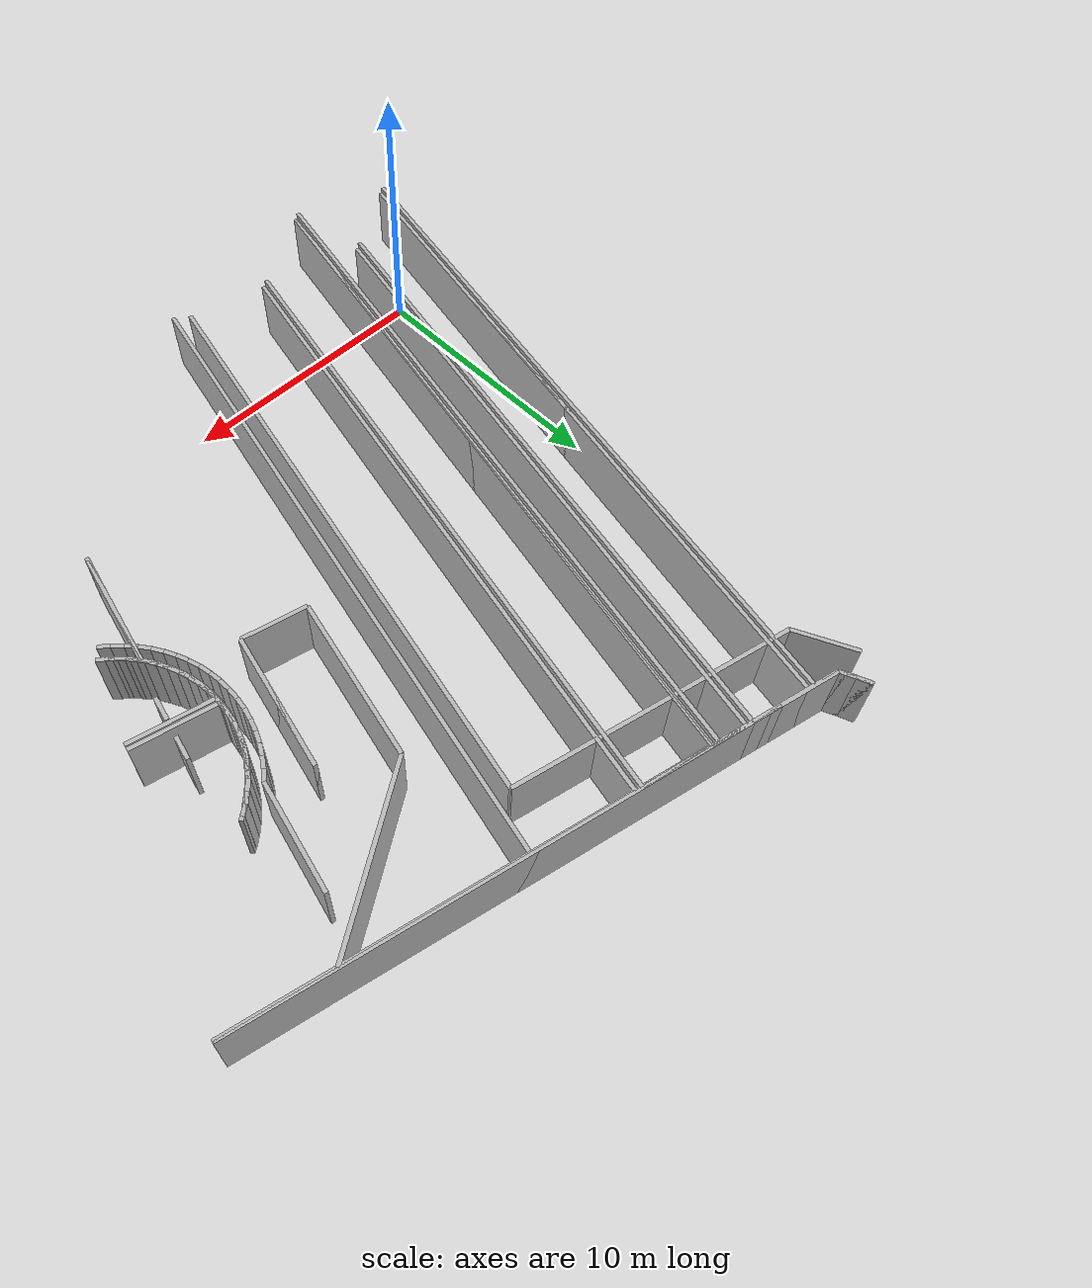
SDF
<sdf version="1.6">
 <model name="sps_2304">
  <static>1</static>
  <allow_auto_disable>0</allow_auto_disable>
  <link name="Wall241">
   <collision name="collision"><geometry><box><size>24.8578 0.15 2.5</size></box></geometry></collision>
   <visual name="visual">
    <geometry><box><size>24.8578 0.15 2.5</size></box></geometry>
    <transparency>0.0</transparency>
   </visual>
   <pose>3.15078 10.2592 1.25 0 0 -1.78506</pose>
  </link>
  <link name="Wall244">
   <collision name="collision"><geometry><box><size>25.0952 0.15 2.5</size></box></geometry></collision>
   <visual name="visual">
    <geometry><box><size>25.0952 0.15 2.5</size></box></geometry>
    <transparency>0.0</transparency>
   </visual>
   <pose>10.7935 8.4622 1.25 0 0 -1.78505</pose>
  </link>
  <link name="Wall546">
   <collision name="collision"><geometry><box><size>22.8546 0.15 2.5</size></box></geometry></collision>
   <visual name="visual">
    <geometry><box><size>22.8546 0.15 2.5</size></box></geometry>
    <transparency>0.0</transparency>
   </visual>
   <pose>10.0221 7.73909 1.25 0 0 -1.78506</pose>
  </link>
  <link name="Wall547">
   <collision name="collision"><geometry><box><size>10.5806 0.15 2.5</size></box></geometry></collision>
   <visual name="visual">
    <geometry><box><size>10.5806 0.15 2.5</size></box></geometry>
    <transparency>0.0</transparency>
   </visual>
   <pose>7.28295 20.0318 1.25 0 0 -0.214621</pose>
  </link>
  <link name="Wall549">
   <collision name="collision"><geometry><box><size>5.15297 0.15 2.5</size></box></geometry></collision>
   <visual name="visual">
    <geometry><box><size>5.15297 0.15 2.5</size></box></geometry>
    <transparency>0.0</transparency>
   </visual>
   <pose>15.6258 11.836 1.25 0 -0 1.35789</pose>
  </link>
  <link name="Wall835">
   <collision name="collision"><geometry><box><size>27.308 0.15 2.5</size></box></geometry></collision>
   <visual name="visual">
    <geometry><box><size>27.308 0.15 2.5</size></box></geometry>
    <transparency>0.0</transparency>
   </visual>
   <pose>0.496238 9.58308 1.25 0 0 -1.78506</pose>
  </link>
  <link name="Wall837">
   <collision name="collision"><geometry><box><size>27.9452 0.15 2.5</size></box></geometry></collision>
   <visual name="visual">
    <geometry><box><size>27.9452 0.15 2.5</size></box></geometry>
    <transparency>0.0</transparency>
   </visual>
   <pose>3.84597 8.51561 1.25 0 0 -1.78505</pose>
  </link>
  <link name="Wall838">
   <collision name="collision"><geometry><box><size>27.6955 0.15 2.5</size></box></geometry></collision>
   <visual name="visual">
    <geometry><box><size>27.6955 0.15 2.5</size></box></geometry>
    <transparency>0.0</transparency>
   </visual>
   <pose>4.11694 8.58458 1.25 0 0 -1.78505</pose>
  </link>
  <link name="Wall1445">
   <collision name="collision"><geometry><box><size>3.97784 0.15 2.5</size></box></geometry></collision>
   <visual name="visual">
    <geometry><box><size>3.97784 0.15 2.5</size></box></geometry>
    <transparency>0.0</transparency>
   </visual>
   <pose>18.0342 15.6526 1.25 0 -0 1.35664</pose>
  </link>
  <link name="Wall1751">
   <collision name="collision"><geometry><box><size>25.1081 0.15 2.5</size></box></geometry></collision>
   <visual name="visual">
    <geometry><box><size>25.1081 0.15 2.5</size></box></geometry>
    <transparency>0.0</transparency>
   </visual>
   <pose>2.87984 10.1901 1.25 0 0 -1.78505</pose>
  </link>
  <link name="Wall1756">
   <collision name="collision"><geometry><box><size>4.57776 0.15 2.5</size></box></geometry></collision>
   <visual name="visual">
    <geometry><box><size>4.57776 0.15 2.5</size></box></geometry>
    <transparency>0.0</transparency>
   </visual>
   <pose>17.3343 5.53429 1.25 0 -0 1.35792</pose>
  </link>
  <link name="Wall2047">
   <collision name="collision"><geometry><box><size>27.5582 0.15 2.5</size></box></geometry></collision>
   <visual name="visual">
    <geometry><box><size>27.5582 0.15 2.5</size></box></geometry>
    <transparency>0.0</transparency>
   </visual>
   <pose>0.225456 9.51408 1.25 0 0 -1.78506</pose>
  </link>
  <link name="Wall2064">
   <collision name="collision"><geometry><box><size>25.0955 0.15 2.5</size></box></geometry></collision>
   <visual name="visual">
    <geometry><box><size>25.0955 0.15 2.5</size></box></geometry>
    <transparency>0.0</transparency>
   </visual>
   <pose>6.93383 9.30208 1.25 0 0 -1.78506</pose>
  </link>
  <link name="Wall2065">
   <collision name="collision"><geometry><box><size>24.8453 0.15 2.5</size></box></geometry></collision>
   <visual name="visual">
    <geometry><box><size>24.8453 0.15 2.5</size></box></geometry>
    <transparency>0.0</transparency>
   </visual>
   <pose>7.20473 9.37111 1.25 0 0 -1.78505</pose>
  </link>
  <link name="Wall4927">
   <collision name="collision"><geometry><box><size>27.6955 0.15 2.5</size></box></geometry></collision>
   <visual name="visual">
    <geometry><box><size>27.6955 0.15 2.5</size></box></geometry>
    <transparency>0.0</transparency>
   </visual>
   <pose>4.11694 8.58458 1.25 0 -0 1.35654</pose>
  </link>
  <link name="Wall4928">
   <collision name="collision"><geometry><box><size>2.60003 0.15 2.5</size></box></geometry></collision>
   <visual name="visual">
    <geometry><box><size>2.60003 0.15 2.5</size></box></geometry>
    <transparency>0.0</transparency>
   </visual>
   <pose>8.33153 21.8393 1.25 0 0 -0.214246</pose>
  </link>
  <link name="Wall5298">
   <collision name="collision"><geometry><box><size>27.308 0.15 2.5</size></box></geometry></collision>
   <visual name="visual">
    <geometry><box><size>27.308 0.15 2.5</size></box></geometry>
    <transparency>0.0</transparency>
   </visual>
   <pose>0.496238 9.58308 1.25 0 -0 1.35653</pose>
  </link>
  <link name="Wall5299">
   <collision name="collision"><geometry><box><size>2.1999 0.15 2.5</size></box></geometry></collision>
   <visual name="visual">
    <geometry><box><size>2.1999 0.15 2.5</size></box></geometry>
    <transparency>0.0</transparency>
   </visual>
   <pose>4.47423 22.691 1.25 0 0 -0.214269</pose>
  </link>
  <link name="Wall7833">
   <collision name="collision"><geometry><box><size>19.2016 0.15 2.5</size></box></geometry></collision>
   <visual name="visual">
    <geometry><box><size>19.2016 0.15 2.5</size></box></geometry>
    <transparency>0.0</transparency>
   </visual>
   <pose>13.8548 20.6462 1.25 0 -0 2.92695</pose>
  </link>
  <link name="Wall7834">
   <collision name="collision"><geometry><box><size>2.30614 0.15 2.5</size></box></geometry></collision>
   <visual name="visual">
    <geometry><box><size>2.30614 0.15 2.5</size></box></geometry>
    <transparency>0.0</transparency>
   </visual>
   <pose>3.34765 22.9367 1.25 0 -0 2.92697</pose>
  </link>
  <link name="Wall7835">
   <collision name="collision"><geometry><box><size>0.000873891 0.15 2.5</size></box></geometry></collision>
   <visual name="visual">
    <geometry><box><size>0.000873891 0.15 2.5</size></box></geometry>
    <transparency>0.0</transparency>
   </visual>
   <pose>2.22063 23.1821 1.25 0 0 -2.70918</pose>
  </link>
  <link name="Wall7836">
   <collision name="collision"><geometry><box><size>0.564526 0.15 2.5</size></box></geometry></collision>
   <visual name="visual">
    <geometry><box><size>0.564526 0.15 2.5</size></box></geometry>
    <transparency>0.0</transparency>
   </visual>
   <pose>2.10574 23.4399 1.25 0 -0 1.98849</pose>
  </link>
  <link name="Wall7837">
   <collision name="collision"><geometry><box><size>0.564373 0.15 2.5</size></box></geometry></collision>
   <visual name="visual">
    <geometry><box><size>0.564373 0.15 2.5</size></box></geometry>
    <transparency>0.0</transparency>
   </visual>
   <pose>1.88274 23.9584 1.25 0 -0 1.96542</pose>
  </link>
  <link name="Wall9500">
   <collision name="collision"><geometry><box><size>2.40124 0.15 2.5</size></box></geometry></collision>
   <visual name="visual">
    <geometry><box><size>2.40124 0.15 2.5</size></box></geometry>
    <transparency>0.0</transparency>
   </visual>
   <pose>13.908 9.57149 1.25 0 -0 2.92861</pose>
  </link>
  <link name="Wall9501">
   <collision name="collision"><geometry><box><size>6.14724 0.15 2.5</size></box></geometry></collision>
   <visual name="visual">
    <geometry><box><size>6.14724 0.15 2.5</size></box></geometry>
    <transparency>0.0</transparency>
   </visual>
   <pose>13.384 12.8295 1.25 0 -0 1.35788</pose>
  </link>
  <link name="Wall9502">
   <collision name="collision"><geometry><box><size>6.58449 0.15 2.5</size></box></geometry></collision>
   <visual name="visual">
    <geometry><box><size>6.58449 0.15 2.5</size></box></geometry>
    <transparency>0.0</transparency>
   </visual>
   <pose>16.8008 17.6172 1.25 0 -0 0.572494</pose>
  </link>
  <link name="Wall10481">
   <collision name="collision"><geometry><box><size>4.47337 0.15 2.5</size></box></geometry></collision>
   <visual name="visual">
    <geometry><box><size>4.47337 0.15 2.5</size></box></geometry>
    <transparency>0.0</transparency>
   </visual>
   <pose>17.3485 5.5991 1.25 0 -0 1.3579</pose>
  </link>
  <link name="Wall10482">
   <collision name="collision"><geometry><box><size>0.399485 0.15 2.5</size></box></geometry></collision>
   <visual name="visual">
    <geometry><box><size>0.399485 0.15 2.5</size></box></geometry>
    <transparency>0.0</transparency>
   </visual>
   <pose>17.9472 7.63039 1.25 0 0 -0.887561</pose>
  </link>
  <link name="Wall10483">
   <collision name="collision"><geometry><box><size>0.399516 0.15 2.5</size></box></geometry></collision>
   <visual name="visual">
    <geometry><box><size>0.399516 0.15 2.5</size></box></geometry>
    <transparency>0.0</transparency>
   </visual>
   <pose>18.2125 7.3322 1.25 0 0 -0.799874</pose>
  </link>
  <link name="Wall10484">
   <collision name="collision"><geometry><box><size>0.399326 0.15 2.5</size></box></geometry></collision>
   <visual name="visual">
    <geometry><box><size>0.399326 0.15 2.5</size></box></geometry>
    <transparency>0.0</transparency>
   </visual>
   <pose>18.5027 7.05839 1.25 0 0 -0.712489</pose>
  </link>
  <link name="Wall10608">
   <collision name="collision"><geometry><box><size>0.39708 0.15 2.5</size></box></geometry></collision>
   <visual name="visual">
    <geometry><box><size>0.39708 0.15 2.5</size></box></geometry>
    <transparency>0.0</transparency>
   </visual>
   <pose>18.4112 7.1263 1.25 0 -0 2.39925</pose>
  </link>
  <link name="Wall10609">
   <collision name="collision"><geometry><box><size>0.396915 0.15 2.5</size></box></geometry></collision>
   <visual name="visual">
    <geometry><box><size>0.396915 0.15 2.5</size></box></geometry>
    <transparency>0.0</transparency>
   </visual>
   <pose>18.1308 7.40681 1.25 0 -0 2.31269</pose>
  </link>
  <link name="Wall10610">
   <collision name="collision"><geometry><box><size>0.397008 0.15 2.5</size></box></geometry></collision>
   <visual name="visual">
    <geometry><box><size>0.397008 0.15 2.5</size></box></geometry>
    <transparency>0.0</transparency>
   </visual>
   <pose>17.8758 7.71062 1.25 0 -0 2.22515</pose>
  </link>
  <link name="Wall10611">
   <collision name="collision"><geometry><box><size>0.397053 0.15 2.5</size></box></geometry></collision>
   <visual name="visual">
    <geometry><box><size>0.397053 0.15 2.5</size></box></geometry>
    <transparency>0.0</transparency>
   </visual>
   <pose>17.6484 8.0356 1.25 0 -0 2.13761</pose>
  </link>
  <link name="Wall10612">
   <collision name="collision"><geometry><box><size>0.396711 0.15 2.5</size></box></geometry></collision>
   <visual name="visual">
    <geometry><box><size>0.396711 0.15 2.5</size></box></geometry>
    <transparency>0.0</transparency>
   </visual>
   <pose>17.4503 8.37907 1.25 0 -0 2.0502</pose>
  </link>
  <link name="Wall10613">
   <collision name="collision"><geometry><box><size>0.397227 0.15 2.5</size></box></geometry></collision>
   <visual name="visual">
    <geometry><box><size>0.397227 0.15 2.5</size></box></geometry>
    <transparency>0.0</transparency>
   </visual>
   <pose>17.2829 8.73857 1.25 0 -0 1.9634</pose>
  </link>
  <link name="Wall10614">
   <collision name="collision"><geometry><box><size>0.396923 0.15 2.5</size></box></geometry></collision>
   <visual name="visual">
    <geometry><box><size>0.396923 0.15 2.5</size></box></geometry>
    <transparency>0.0</transparency>
   </visual>
   <pose>17.1473 9.11137 1.25 0 -0 1.87582</pose>
  </link>
  <link name="Wall10615">
   <collision name="collision"><geometry><box><size>0.396781 0.15 2.5</size></box></geometry></collision>
   <visual name="visual">
    <geometry><box><size>0.396781 0.15 2.5</size></box></geometry>
    <transparency>0.0</transparency>
   </visual>
   <pose>17.0448 9.49437 1.25 0 -0 1.7888</pose>
  </link>
  <link name="Wall10616">
   <collision name="collision"><geometry><box><size>0.39698 0.15 2.5</size></box></geometry></collision>
   <visual name="visual">
    <geometry><box><size>0.39698 0.15 2.5</size></box></geometry>
    <transparency>0.0</transparency>
   </visual>
   <pose>16.9761 9.88487 1.25 0 -0 1.70108</pose>
  </link>
  <link name="Wall10617">
   <collision name="collision"><geometry><box><size>0.39698 0.15 2.5</size></box></geometry></collision>
   <visual name="visual">
    <geometry><box><size>0.39698 0.15 2.5</size></box></geometry>
    <transparency>0.0</transparency>
   </visual>
   <pose>16.9417 10.28 1.25 0 -0 1.61417</pose>
  </link>
  <link name="Wall10618">
   <collision name="collision"><geometry><box><size>0.396988 0.15 2.5</size></box></geometry></collision>
   <visual name="visual">
    <geometry><box><size>0.396988 0.15 2.5</size></box></geometry>
    <transparency>0.0</transparency>
   </visual>
   <pose>16.9418 10.6766 1.25 0 -0 1.52696</pose>
  </link>
  <link name="Wall10619">
   <collision name="collision"><geometry><box><size>0.397012 0.15 2.5</size></box></geometry></collision>
   <visual name="visual">
    <geometry><box><size>0.397012 0.15 2.5</size></box></geometry>
    <transparency>0.0</transparency>
   </visual>
   <pose>16.9764 11.0717 1.25 0 -0 1.4399</pose>
  </link>
  <link name="Wall10620">
   <collision name="collision"><geometry><box><size>0.397039 0.15 2.5</size></box></geometry></collision>
   <visual name="visual">
    <geometry><box><size>0.397039 0.15 2.5</size></box></geometry>
    <transparency>0.0</transparency>
   </visual>
   <pose>17.0454 11.4623 1.25 0 -0 1.35199</pose>
  </link>
  <link name="Wall10621">
   <collision name="collision"><geometry><box><size>0.396803 0.15 2.5</size></box></geometry></collision>
   <visual name="visual">
    <geometry><box><size>0.396803 0.15 2.5</size></box></geometry>
    <transparency>0.0</transparency>
   </visual>
   <pose>17.1482 11.8453 1.25 0 -0 1.2652</pose>
  </link>
  <link name="Wall10622">
   <collision name="collision"><geometry><box><size>0.397081 0.15 2.5</size></box></geometry></collision>
   <visual name="visual">
    <geometry><box><size>0.397081 0.15 2.5</size></box></geometry>
    <transparency>0.0</transparency>
   </visual>
   <pose>17.2839 12.2179 1.25 0 -0 1.17787</pose>
  </link>
  <link name="Wall10623">
   <collision name="collision"><geometry><box><size>0.39688 0.15 2.5</size></box></geometry></collision>
   <visual name="visual">
    <geometry><box><size>0.39688 0.15 2.5</size></box></geometry>
    <transparency>0.0</transparency>
   </visual>
   <pose>17.4516 12.5773 1.25 0 -0 1.09057</pose>
  </link>
  <link name="Wall10624">
   <collision name="collision"><geometry><box><size>0.39703 0.15 2.5</size></box></geometry></collision>
   <visual name="visual">
    <geometry><box><size>0.39703 0.15 2.5</size></box></geometry>
    <transparency>0.0</transparency>
   </visual>
   <pose>17.65 12.9207 1.25 0 -0 1.00322</pose>
  </link>
  <link name="Wall10625">
   <collision name="collision"><geometry><box><size>0.396937 0.15 2.5</size></box></geometry></collision>
   <visual name="visual">
    <geometry><box><size>0.396937 0.15 2.5</size></box></geometry>
    <transparency>0.0</transparency>
   </visual>
   <pose>17.8776 13.2455 1.25 0 -0 0.915916</pose>
  </link>
  <link name="Wall10626">
   <collision name="collision"><geometry><box><size>0.396956 0.15 2.5</size></box></geometry></collision>
   <visual name="visual">
    <geometry><box><size>0.396956 0.15 2.5</size></box></geometry>
    <transparency>0.0</transparency>
   </visual>
   <pose>18.1326 13.5492 1.25 0 -0 0.828792</pose>
  </link>
  <link name="Wall10627">
   <collision name="collision"><geometry><box><size>0.396926 0.15 2.5</size></box></geometry></collision>
   <visual name="visual">
    <geometry><box><size>0.396926 0.15 2.5</size></box></geometry>
    <transparency>0.0</transparency>
   </visual>
   <pose>18.4131 13.8295 1.25 0 -0 0.741239</pose>
  </link>
  <link name="Wall16805">
   <collision name="collision"><geometry><box><size>0.0386176 0.15 2.5</size></box></geometry></collision>
   <visual name="visual">
    <geometry><box><size>0.0386176 0.15 2.5</size></box></geometry>
    <transparency>0.0</transparency>
   </visual>
   <pose>16.944 10.4881 1.25 0 0 -0.208554</pose>
  </link>
  <link name="Wall16806">
   <collision name="collision"><geometry><box><size>3.02199 0.15 2.5</size></box></geometry></collision>
   <visual name="visual">
    <geometry><box><size>3.02199 0.15 2.5</size></box></geometry>
    <transparency>0.0</transparency>
   </visual>
   <pose>18.4397 10.1645 1.25 0 0 -0.213133</pose>
  </link>
  <link name="Wall16841">
   <collision name="collision"><geometry><box><size>0.396863 0.15 2.5</size></box></geometry></collision>
   <visual name="visual">
    <geometry><box><size>0.396863 0.15 2.5</size></box></geometry>
    <transparency>0.0</transparency>
   </visual>
   <pose>18.7086 14.1037 1.25 0 0 -2.48696</pose>
  </link>
  <link name="Wall16842">
   <collision name="collision"><geometry><box><size>0.39705 0.15 2.5</size></box></geometry></collision>
   <visual name="visual">
    <geometry><box><size>0.39705 0.15 2.5</size></box></geometry>
    <transparency>0.0</transparency>
   </visual>
   <pose>18.4048 13.8488 1.25 0 0 -2.40001</pose>
  </link>
  <link name="Wall16843">
   <collision name="collision"><geometry><box><size>0.397038 0.15 2.5</size></box></geometry></collision>
   <visual name="visual">
    <geometry><box><size>0.397038 0.15 2.5</size></box></geometry>
    <transparency>0.0</transparency>
   </visual>
   <pose>18.1243 13.5684 1.25 0 0 -2.31303</pose>
  </link>
  <link name="Wall16844">
   <collision name="collision"><geometry><box><size>0.396815 0.15 2.5</size></box></geometry></collision>
   <visual name="visual">
    <geometry><box><size>0.396815 0.15 2.5</size></box></geometry>
    <transparency>0.0</transparency>
   </visual>
   <pose>17.8693 13.2647 1.25 0 0 -2.22553</pose>
  </link>
  <link name="Wall16845">
   <collision name="collision"><geometry><box><size>0.397049 0.15 2.5</size></box></geometry></collision>
   <visual name="visual">
    <geometry><box><size>0.397049 0.15 2.5</size></box></geometry>
    <transparency>0.0</transparency>
   </visual>
   <pose>17.6417 12.9399 1.25 0 0 -2.13816</pose>
  </link>
  <link name="Wall16846">
   <collision name="collision"><geometry><box><size>0.396908 0.15 2.5</size></box></geometry></collision>
   <visual name="visual">
    <geometry><box><size>0.396908 0.15 2.5</size></box></geometry>
    <transparency>0.0</transparency>
   </visual>
   <pose>17.4434 12.5965 1.25 0 0 -2.05116</pose>
  </link>
  <link name="Wall16847">
   <collision name="collision"><geometry><box><size>0.397058 0.15 2.5</size></box></geometry></collision>
   <visual name="visual">
    <geometry><box><size>0.397058 0.15 2.5</size></box></geometry>
    <transparency>0.0</transparency>
   </visual>
   <pose>17.2757 12.2371 1.25 0 0 -1.96358</pose>
  </link>
  <link name="Wall16848">
   <collision name="collision"><geometry><box><size>0.396745 0.15 2.5</size></box></geometry></collision>
   <visual name="visual">
    <geometry><box><size>0.396745 0.15 2.5</size></box></geometry>
    <transparency>0.0</transparency>
   </visual>
   <pose>17.14 11.8645 1.25 0 0 -1.87644</pose>
  </link>
  <link name="Wall16849">
   <collision name="collision"><geometry><box><size>0.397059 0.15 2.5</size></box></geometry></collision>
   <visual name="visual">
    <geometry><box><size>0.397059 0.15 2.5</size></box></geometry>
    <transparency>0.0</transparency>
   </visual>
   <pose>17.0373 11.4815 1.25 0 0 -1.78912</pose>
  </link>
  <link name="Wall16850">
   <collision name="collision"><geometry><box><size>0.396975 0.15 2.5</size></box></geometry></collision>
   <visual name="visual">
    <geometry><box><size>0.396975 0.15 2.5</size></box></geometry>
    <transparency>0.0</transparency>
   </visual>
   <pose>16.9683 11.0909 1.25 0 0 -1.70217</pose>
  </link>
  <link name="Wall16851">
   <collision name="collision"><geometry><box><size>0.396807 0.15 2.5</size></box></geometry></collision>
   <visual name="visual">
    <geometry><box><size>0.396807 0.15 2.5</size></box></geometry>
    <transparency>0.0</transparency>
   </visual>
   <pose>16.9336 10.6959 1.25 0 0 -1.6148</pose>
  </link>
  <link name="Wall16852">
   <collision name="collision"><geometry><box><size>0.39698 0.15 2.5</size></box></geometry></collision>
   <visual name="visual">
    <geometry><box><size>0.39698 0.15 2.5</size></box></geometry>
    <transparency>0.0</transparency>
   </visual>
   <pose>16.9334 10.2994 1.25 0 0 -1.52743</pose>
  </link>
  <link name="Wall16853">
   <collision name="collision"><geometry><box><size>0.397012 0.15 2.5</size></box></geometry></collision>
   <visual name="visual">
    <geometry><box><size>0.397012 0.15 2.5</size></box></geometry>
    <transparency>0.0</transparency>
   </visual>
   <pose>16.9679 9.90428 1.25 0 0 -1.4399</pose>
  </link>
  <link name="Wall16854">
   <collision name="collision"><geometry><box><size>0.39696 0.15 2.5</size></box></geometry></collision>
   <visual name="visual">
    <geometry><box><size>0.39696 0.15 2.5</size></box></geometry>
    <transparency>0.0</transparency>
   </visual>
   <pose>17.0368 9.51369 1.25 0 0 -1.35289</pose>
  </link>
  <link name="Wall16855">
   <collision name="collision"><geometry><box><size>0.396923 0.15 2.5</size></box></geometry></collision>
   <visual name="visual">
    <geometry><box><size>0.396923 0.15 2.5</size></box></geometry>
    <transparency>0.0</transparency>
   </visual>
   <pose>17.1393 9.1306 1.25 0 0 -1.26577</pose>
  </link>
  <link name="Wall16856">
   <collision name="collision"><geometry><box><size>0.396988 0.15 2.5</size></box></geometry></collision>
   <visual name="visual">
    <geometry><box><size>0.396988 0.15 2.5</size></box></geometry>
    <transparency>0.0</transparency>
   </visual>
   <pose>17.2748 8.75789 1.25 0 0 -1.17844</pose>
  </link>
  <link name="Wall16857">
   <collision name="collision"><geometry><box><size>0.396958 0.15 2.5</size></box></geometry></collision>
   <visual name="visual">
    <geometry><box><size>0.396958 0.15 2.5</size></box></geometry>
    <transparency>0.0</transparency>
   </visual>
   <pose>17.4423 8.39839 1.25 0 0 -1.0912</pose>
  </link>
  <link name="Wall16858">
   <collision name="collision"><geometry><box><size>0.39695 0.15 2.5</size></box></geometry></collision>
   <visual name="visual">
    <geometry><box><size>0.39695 0.15 2.5</size></box></geometry>
    <transparency>0.0</transparency>
   </visual>
   <pose>17.6404 8.05488 1.25 0 0 -1.00382</pose>
  </link>
  <link name="Wall16859">
   <collision name="collision"><geometry><box><size>0.397008 0.15 2.5</size></box></geometry></collision>
   <visual name="visual">
    <geometry><box><size>0.397008 0.15 2.5</size></box></geometry>
    <transparency>0.0</transparency>
   </visual>
   <pose>17.8679 7.72996 1.25 0 0 -0.916441</pose>
  </link>
  <link name="Wall16860">
   <collision name="collision"><geometry><box><size>0.39705 0.15 2.5</size></box></geometry></collision>
   <visual name="visual">
    <geometry><box><size>0.39705 0.15 2.5</size></box></geometry>
    <transparency>0.0</transparency>
   </visual>
   <pose>18.1228 7.42607 1.25 0 0 -0.829217</pose>
  </link>
  <link name="Wall16861">
   <collision name="collision"><geometry><box><size>0.396915 0.15 2.5</size></box></geometry></collision>
   <visual name="visual">
    <geometry><box><size>0.396915 0.15 2.5</size></box></geometry>
    <transparency>0.0</transparency>
   </visual>
   <pose>18.4032 7.14558 1.25 0 0 -0.741891</pose>
  </link>
  <link name="Wall16862">
   <collision name="collision"><geometry><box><size>0.396974 0.15 2.5</size></box></geometry></collision>
   <visual name="visual">
    <geometry><box><size>0.396974 0.15 2.5</size></box></geometry>
    <transparency>0.0</transparency>
   </visual>
   <pose>18.7069 6.89058 1.25 0 0 -0.655002</pose>
  </link>
  <link name="Wall23962">
   <collision name="collision"><geometry><box><size>2.40124 0.15 2.5</size></box></geometry></collision>
   <visual name="visual">
    <geometry><box><size>2.40124 0.15 2.5</size></box></geometry>
    <transparency>0.0</transparency>
   </visual>
   <pose>13.908 9.57149 1.25 0 -0 2.92861</pose>
  </link>
  <link name="Wall23963">
   <collision name="collision"><geometry><box><size>6.14724 0.15 2.5</size></box></geometry></collision>
   <visual name="visual">
    <geometry><box><size>6.14724 0.15 2.5</size></box></geometry>
    <transparency>0.0</transparency>
   </visual>
   <pose>13.384 12.8295 1.25 0 -0 1.35788</pose>
  </link>
  <link name="Wall23964">
   <collision name="collision"><geometry><box><size>6.58449 0.15 2.5</size></box></geometry></collision>
   <visual name="visual">
    <geometry><box><size>6.58449 0.15 2.5</size></box></geometry>
    <transparency>0.0</transparency>
   </visual>
   <pose>16.8008 17.6172 1.25 0 -0 0.572494</pose>
  </link>
  <link name="Wall23967">
   <collision name="collision"><geometry><box><size>5.15297 0.15 2.5</size></box></geometry></collision>
   <visual name="visual">
    <geometry><box><size>5.15297 0.15 2.5</size></box></geometry>
    <transparency>0.0</transparency>
   </visual>
   <pose>15.6258 11.836 1.25 0 0 -1.7837</pose>
  </link>
  <link name="Wall23972">
   <collision name="collision"><geometry><box><size>0.39981 0.15 2.5</size></box></geometry></collision>
   <visual name="visual">
    <geometry><box><size>0.39981 0.15 2.5</size></box></geometry>
    <transparency>0.0</transparency>
   </visual>
   <pose>18.5862 14.0117 1.25 0 0 -2.45567</pose>
  </link>
  <link name="Wall23973">
   <collision name="collision"><geometry><box><size>0.399846 0.15 2.5</size></box></geometry></collision>
   <visual name="visual">
    <geometry><box><size>0.399846 0.15 2.5</size></box></geometry>
    <transparency>0.0</transparency>
   </visual>
   <pose>18.2885 13.7454 1.25 0 0 -2.36785</pose>
  </link>
  <link name="Wall23974">
   <collision name="collision"><geometry><box><size>0.399807 0.15 2.5</size></box></geometry></collision>
   <visual name="visual">
    <geometry><box><size>0.399807 0.15 2.5</size></box></geometry>
    <transparency>0.0</transparency>
   </visual>
   <pose>18.0153 13.454 1.25 0 0 -2.28023</pose>
  </link>
  <link name="Wall23975">
   <collision name="collision"><geometry><box><size>0.399779 0.15 2.5</size></box></geometry></collision>
   <visual name="visual">
    <geometry><box><size>0.399779 0.15 2.5</size></box></geometry>
    <transparency>0.0</transparency>
   </visual>
   <pose>17.7686 13.1398 1.25 0 0 -2.19234</pose>
  </link>
  <link name="Wall23976">
   <collision name="collision"><geometry><box><size>0.399824 0.15 2.5</size></box></geometry></collision>
   <visual name="visual">
    <geometry><box><size>0.399824 0.15 2.5</size></box></geometry>
    <transparency>0.0</transparency>
   </visual>
   <pose>17.5506 12.8052 1.25 0 0 -2.10441</pose>
  </link>
  <link name="Wall23977">
   <collision name="collision"><geometry><box><size>0.399785 0.15 2.5</size></box></geometry></collision>
   <visual name="visual">
    <geometry><box><size>0.399785 0.15 2.5</size></box></geometry>
    <transparency>0.0</transparency>
   </visual>
   <pose>17.3628 12.4527 1.25 0 0 -2.01621</pose>
  </link>
  <link name="Wall23978">
   <collision name="collision"><geometry><box><size>0.399865 0.15 2.5</size></box></geometry></collision>
   <visual name="visual">
    <geometry><box><size>0.399865 0.15 2.5</size></box></geometry>
    <transparency>0.0</transparency>
   </visual>
   <pose>17.2067 12.085 1.25 0 0 -1.92837</pose>
  </link>
  <link name="Wall23979">
   <collision name="collision"><geometry><box><size>0.399738 0.15 2.5</size></box></geometry></collision>
   <visual name="visual">
    <geometry><box><size>0.399738 0.15 2.5</size></box></geometry>
    <transparency>0.0</transparency>
   </visual>
   <pose>17.0834 11.7051 1.25 0 0 -1.84081</pose>
  </link>
  <link name="Wall23980">
   <collision name="collision"><geometry><box><size>0.399796 0.15 2.5</size></box></geometry></collision>
   <visual name="visual">
    <geometry><box><size>0.399796 0.15 2.5</size></box></geometry>
    <transparency>0.0</transparency>
   </visual>
   <pose>16.9939 11.3159 1.25 0 0 -1.75286</pose>
  </link>
  <link name="Wall23981">
   <collision name="collision"><geometry><box><size>0.399765 0.15 2.5</size></box></geometry></collision>
   <visual name="visual">
    <geometry><box><size>0.399765 0.15 2.5</size></box></geometry>
    <transparency>0.0</transparency>
   </visual>
   <pose>16.939 10.9203 1.25 0 0 -1.66452</pose>
  </link>
  <link name="Wall23982">
   <collision name="collision"><geometry><box><size>0.399972 0.15 2.5</size></box></geometry></collision>
   <visual name="visual">
    <geometry><box><size>0.399972 0.15 2.5</size></box></geometry>
    <transparency>0.0</transparency>
   </visual>
   <pose>16.919 10.5213 1.25 0 0 -1.57721</pose>
  </link>
  <link name="Wall23983">
   <collision name="collision"><geometry><box><size>0.399783 0.15 2.5</size></box></geometry></collision>
   <visual name="visual">
    <geometry><box><size>0.399783 0.15 2.5</size></box></geometry>
    <transparency>0.0</transparency>
   </visual>
   <pose>16.9341 10.1221 1.25 0 0 -1.48872</pose>
  </link>
  <link name="Wall23984">
   <collision name="collision"><geometry><box><size>0.399703 0.15 2.5</size></box></geometry></collision>
   <visual name="visual">
    <geometry><box><size>0.399703 0.15 2.5</size></box></geometry>
    <transparency>0.0</transparency>
   </visual>
   <pose>16.9842 9.72587 1.25 0 0 -1.40141</pose>
  </link>
  <link name="Wall23985">
   <collision name="collision"><geometry><box><size>0.399824 0.15 2.5</size></box></geometry></collision>
   <visual name="visual">
    <geometry><box><size>0.399824 0.15 2.5</size></box></geometry>
    <transparency>0.0</transparency>
   </visual>
   <pose>17.0688 9.33559 1.25 0 0 -1.31286</pose>
  </link>
  <link name="Wall23986">
   <collision name="collision"><geometry><box><size>0.399856 0.15 2.5</size></box></geometry></collision>
   <visual name="visual">
    <geometry><box><size>0.399856 0.15 2.5</size></box></geometry>
    <transparency>0.0</transparency>
   </visual>
   <pose>17.1876 8.95418 1.25 0 0 -1.22525</pose>
  </link>
  <link name="Wall23987">
   <collision name="collision"><geometry><box><size>0.39988 0.15 2.5</size></box></geometry></collision>
   <visual name="visual">
    <geometry><box><size>0.39988 0.15 2.5</size></box></geometry>
    <transparency>0.0</transparency>
   </visual>
   <pose>17.3392 8.58458 1.25 0 0 -1.1378</pose>
  </link>
  <link name="Wall23988">
   <collision name="collision"><geometry><box><size>0.399791 0.15 2.5</size></box></geometry></collision>
   <visual name="visual">
    <geometry><box><size>0.399791 0.15 2.5</size></box></geometry>
    <transparency>0.0</transparency>
   </visual>
   <pose>17.5227 8.22978 1.25 0 0 -1.04915</pose>
  </link>
  <link name="Wall23989">
   <collision name="collision"><geometry><box><size>0.399896 0.15 2.5</size></box></geometry></collision>
   <visual name="visual">
    <geometry><box><size>0.399896 0.15 2.5</size></box></geometry>
    <transparency>0.0</transparency>
   </visual>
   <pose>17.7367 7.89247 1.25 0 0 -0.961796</pose>
  </link>
  <link name="Wall23990">
   <collision name="collision"><geometry><box><size>0.399648 0.15 2.5</size></box></geometry></collision>
   <visual name="visual">
    <geometry><box><size>0.399648 0.15 2.5</size></box></geometry>
    <transparency>0.0</transparency>
   </visual>
   <pose>17.9793 7.57527 1.25 0 0 -0.873633</pose>
  </link>
  <link name="Wall23991">
   <collision name="collision"><geometry><box><size>0.399949 0.15 2.5</size></box></geometry></collision>
   <visual name="visual">
    <geometry><box><size>0.399949 0.15 2.5</size></box></geometry>
    <transparency>0.0</transparency>
   </visual>
   <pose>18.249 7.28059 1.25 0 0 -0.785938</pose>
  </link>
  <link name="Wall23992">
   <collision name="collision"><geometry><box><size>0.399617 0.15 2.5</size></box></geometry></collision>
   <visual name="visual">
    <geometry><box><size>0.399617 0.15 2.5</size></box></geometry>
    <transparency>0.0</transparency>
   </visual>
   <pose>18.5434 7.0107 1.25 0 0 -0.698024</pose>
  </link>
  <link name="Wall28991">
   <collision name="collision"><geometry><box><size>0.564373 0.15 2.5</size></box></geometry></collision>
   <visual name="visual">
    <geometry><box><size>0.564373 0.15 2.5</size></box></geometry>
    <transparency>0.0</transparency>
   </visual>
   <pose>1.88274 23.9584 1.25 0 0 -1.17617</pose>
  </link>
  <link name="Wall28992">
   <collision name="collision"><geometry><box><size>0.564526 0.15 2.5</size></box></geometry></collision>
   <visual name="visual">
    <geometry><box><size>0.564526 0.15 2.5</size></box></geometry>
    <transparency>0.0</transparency>
   </visual>
   <pose>2.10574 23.4399 1.25 0 0 -1.1531</pose>
  </link>
  <link name="Wall28996">
   <collision name="collision"><geometry><box><size>0.895223 0.15 2.5</size></box></geometry></collision>
   <visual name="visual">
    <geometry><box><size>0.895223 0.15 2.5</size></box></geometry>
    <transparency>0.0</transparency>
   </visual>
   <pose>18.7063 11.1212 1.25 0 -0 1.35784</pose>
  </link>
  <link name="Wall28997">
   <collision name="collision"><geometry><box><size>0.435245 0.15 2.5</size></box></geometry></collision>
   <visual name="visual">
    <geometry><box><size>0.435245 0.15 2.5</size></box></geometry>
    <transparency>0.0</transparency>
   </visual>
   <pose>17.4795 13.5361 1.25 0 0 -2.22263</pose>
  </link>
  <link name="Wall28998">
   <collision name="collision"><geometry><box><size>0.435163 0.15 2.5</size></box></geometry></collision>
   <visual name="visual">
    <geometry><box><size>0.435163 0.15 2.5</size></box></geometry>
    <transparency>0.0</transparency>
   </visual>
   <pose>17.2309 13.1794 1.25 0 0 -2.13623</pose>
  </link>
  <link name="Wall28999">
   <collision name="collision"><geometry><box><size>0.435306 0.15 2.5</size></box></geometry></collision>
   <visual name="visual">
    <geometry><box><size>0.435306 0.15 2.5</size></box></geometry>
    <transparency>0.0</transparency>
   </visual>
   <pose>17.0141 12.8025 1.25 0 0 -2.04931</pose>
  </link>
  <link name="Wall29000">
   <collision name="collision"><geometry><box><size>0.435375 0.15 2.5</size></box></geometry></collision>
   <visual name="visual">
    <geometry><box><size>0.435375 0.15 2.5</size></box></geometry>
    <transparency>0.0</transparency>
   </visual>
   <pose>16.8307 12.4081 1.25 0 0 -1.96247</pose>
  </link>
  <link name="Wall29001">
   <collision name="collision"><geometry><box><size>0.435103 0.15 2.5</size></box></geometry></collision>
   <visual name="visual">
    <geometry><box><size>0.435103 0.15 2.5</size></box></geometry>
    <transparency>0.0</transparency>
   </visual>
   <pose>16.6822 11.9994 1.25 0 0 -1.87613</pose>
  </link>
  <link name="Wall29002">
   <collision name="collision"><geometry><box><size>0.435298 0.15 2.5</size></box></geometry></collision>
   <visual name="visual">
    <geometry><box><size>0.435298 0.15 2.5</size></box></geometry>
    <transparency>0.0</transparency>
   </visual>
   <pose>16.5698 11.5794 1.25 0 0 -1.78887</pose>
  </link>
  <link name="Wall29003">
   <collision name="collision"><geometry><box><size>0.435328 0.15 2.5</size></box></geometry></collision>
   <visual name="visual">
    <geometry><box><size>0.435328 0.15 2.5</size></box></geometry>
    <transparency>0.0</transparency>
   </visual>
   <pose>16.4942 11.1511 1.25 0 0 -1.70212</pose>
  </link>
  <link name="Wall29004">
   <collision name="collision"><geometry><box><size>0.435256 0.15 2.5</size></box></geometry></collision>
   <visual name="visual">
    <geometry><box><size>0.435256 0.15 2.5</size></box></geometry>
    <transparency>0.0</transparency>
   </visual>
   <pose>16.4559 10.7179 1.25 0 0 -1.61582</pose>
  </link>
  <link name="Wall29005">
   <collision name="collision"><geometry><box><size>0.435195 0.15 2.5</size></box></geometry></collision>
   <visual name="visual">
    <geometry><box><size>0.435195 0.15 2.5</size></box></geometry>
    <transparency>0.0</transparency>
   </visual>
   <pose>16.4552 10.2831 1.25 0 0 -1.52899</pose>
  </link>
  <link name="Wall29006">
   <collision name="collision"><geometry><box><size>0.435412 0.15 2.5</size></box></geometry></collision>
   <visual name="visual">
    <geometry><box><size>0.435412 0.15 2.5</size></box></geometry>
    <transparency>0.0</transparency>
   </visual>
   <pose>16.4921 9.84978 1.25 0 0 -1.44232</pose>
  </link>
  <link name="Wall29007">
   <collision name="collision"><geometry><box><size>0.435266 0.15 2.5</size></box></geometry></collision>
   <visual name="visual">
    <geometry><box><size>0.435266 0.15 2.5</size></box></geometry>
    <transparency>0.0</transparency>
   </visual>
   <pose>16.5666 9.42128 1.25 0 0 -1.355</pose>
  </link>
  <link name="Wall29008">
   <collision name="collision"><geometry><box><size>0.435091 0.15 2.5</size></box></geometry></collision>
   <visual name="visual">
    <geometry><box><size>0.435091 0.15 2.5</size></box></geometry>
    <transparency>0.0</transparency>
   </visual>
   <pose>16.6779 9.00099 1.25 0 0 -1.26883</pose>
  </link>
  <link name="Wall29009">
   <collision name="collision"><geometry><box><size>0.435273 0.15 2.5</size></box></geometry></collision>
   <visual name="visual">
    <geometry><box><size>0.435273 0.15 2.5</size></box></geometry>
    <transparency>0.0</transparency>
   </visual>
   <pose>16.8252 8.5919 1.25 0 0 -1.18191</pose>
  </link>
  <link name="Wall29010">
   <collision name="collision"><geometry><box><size>0.435372 0.15 2.5</size></box></geometry></collision>
   <visual name="visual">
    <geometry><box><size>0.435372 0.15 2.5</size></box></geometry>
    <transparency>0.0</transparency>
   </visual>
   <pose>17.0074 8.19701 1.25 0 0 -1.09505</pose>
  </link>
  <link name="Wall29011">
   <collision name="collision"><geometry><box><size>0.435214 0.15 2.5</size></box></geometry></collision>
   <visual name="visual">
    <geometry><box><size>0.435214 0.15 2.5</size></box></geometry>
    <transparency>0.0</transparency>
   </visual>
   <pose>17.2231 7.81938 1.25 0 0 -1.00858</pose>
  </link>
  <link name="Wall29012">
   <collision name="collision"><geometry><box><size>0.435248 0.15 2.5</size></box></geometry></collision>
   <visual name="visual">
    <geometry><box><size>0.435248 0.15 2.5</size></box></geometry>
    <transparency>0.0</transparency>
   </visual>
   <pose>17.4706 7.46187 1.25 0 0 -0.921966</pose>
  </link>
  <link name="Wall29013">
   <collision name="collision"><geometry><box><size>0.435222 0.15 2.5</size></box></geometry></collision>
   <visual name="visual">
    <geometry><box><size>0.435222 0.15 2.5</size></box></geometry>
    <transparency>0.0</transparency>
   </visual>
   <pose>17.7482 7.12718 1.25 0 0 -0.834802</pose>
  </link>
  <link name="Wall29014">
   <collision name="collision"><geometry><box><size>0.435336 0.15 2.5</size></box></geometry></collision>
   <visual name="visual">
    <geometry><box><size>0.435336 0.15 2.5</size></box></geometry>
    <transparency>0.0</transparency>
   </visual>
   <pose>18.0538 6.81779 1.25 0 0 -0.748312</pose>
  </link>
  <link name="Wall29015">
   <collision name="collision"><geometry><box><size>0.435215 0.15 2.5</size></box></geometry></collision>
   <visual name="visual">
    <geometry><box><size>0.435215 0.15 2.5</size></box></geometry>
    <transparency>0.0</transparency>
   </visual>
   <pose>18.385 6.53599 1.25 0 0 -0.661621</pose>
  </link>
  <link name="Wall32305">
   <collision name="collision"><geometry><box><size>0.00633267 0.15 2.5</size></box></geometry></collision>
   <visual name="visual">
    <geometry><box><size>0.00633267 0.15 2.5</size></box></geometry>
    <transparency>0.0</transparency>
   </visual>
   <pose>16.9625 10.6875 1.25 0 0 -0.184164</pose>
  </link>
  <link name="Wall32306">
   <collision name="collision"><geometry><box><size>3.06229 0.15 2.5</size></box></geometry></collision>
   <visual name="visual">
    <geometry><box><size>3.06229 0.15 2.5</size></box></geometry>
    <transparency>0.0</transparency>
   </visual>
   <pose>18.4621 10.363 1.25 0 0 -0.213161</pose>
  </link>
  <link name="Wall32309">
   <collision name="collision"><geometry><box><size>2.30614 0.15 2.5</size></box></geometry></collision>
   <visual name="visual">
    <geometry><box><size>2.30614 0.15 2.5</size></box></geometry>
    <transparency>0.0</transparency>
   </visual>
   <pose>3.34765 22.9367 1.25 0 0 -0.214618</pose>
  </link>
  <link name="Wall32310">
   <collision name="collision"><geometry><box><size>19.2016 0.15 2.5</size></box></geometry></collision>
   <visual name="visual">
    <geometry><box><size>19.2016 0.15 2.5</size></box></geometry>
    <transparency>0.0</transparency>
   </visual>
   <pose>13.8548 20.6462 1.25 0 0 -0.214639</pose>
  </link>
  <link name="Wall36652">
   <collision name="collision"><geometry><box><size>2.31546 0.15 2.5</size></box></geometry></collision>
   <visual name="visual">
    <geometry><box><size>2.31546 0.15 2.5</size></box></geometry>
    <transparency>0.0</transparency>
   </visual>
   <pose>1.60696 22.1993 1.25 0 0 -1.11743</pose>
  </link>
  <link name="Wall36656">
   <collision name="collision"><geometry><box><size>0.895044 0.15 2.5</size></box></geometry></collision>
   <visual name="visual">
    <geometry><box><size>0.895044 0.15 2.5</size></box></geometry>
    <transparency>0.0</transparency>
   </visual>
   <pose>18.3803 9.61449 1.25 0 -0 1.35779</pose>
  </link>
 </model>
</sdf>
